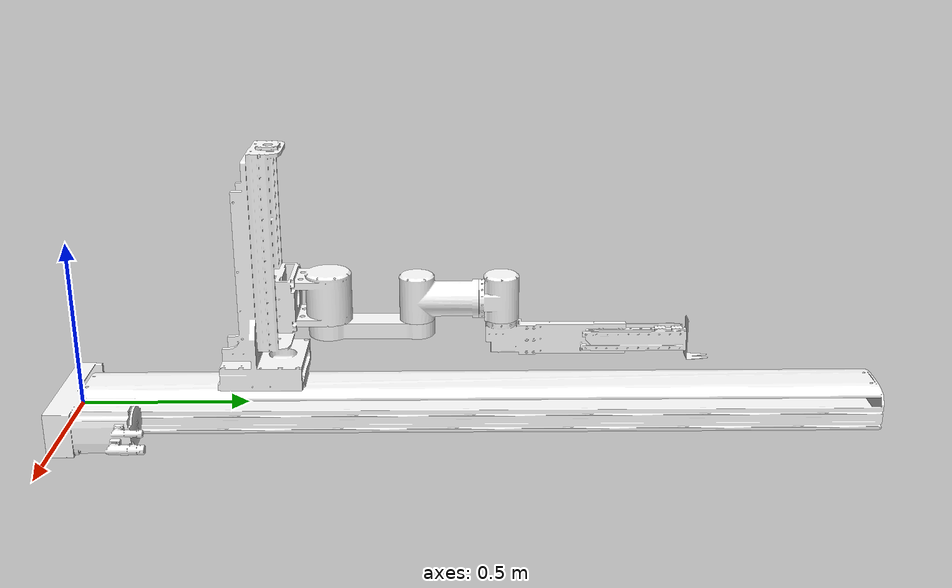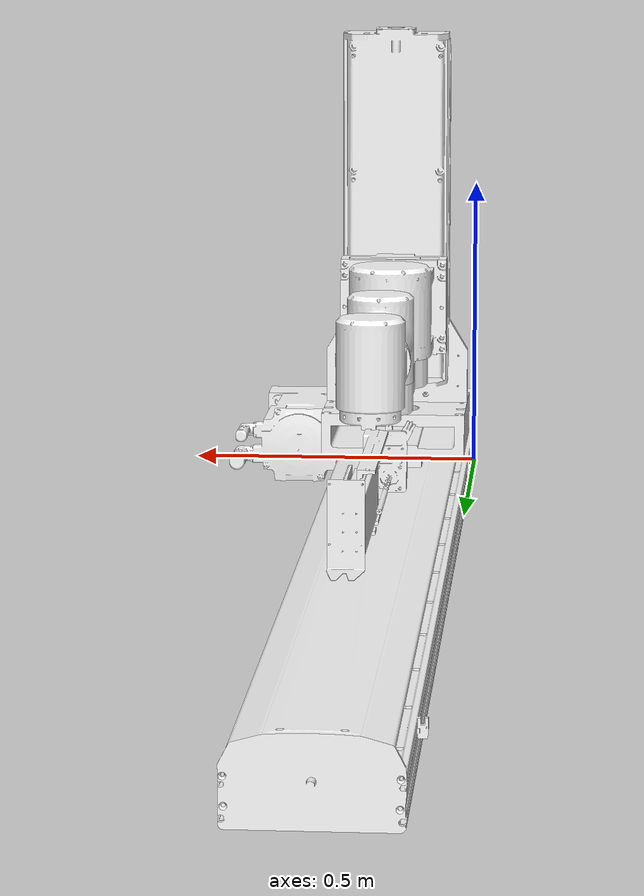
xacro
<?xml version="1.0"?>
<robot xmlns:xacro="http://www.ros.org/wiki/xacro" name="TechRobot">
  <xacro:arg name="prefix" default="" />
  <xacro:arg name="eth_device" default="enp4s0" />

  <xacro:include filename="$(find TechControlInterface)/urdf/robot_description.urdf.xacro" />

  <xacro:include filename="$(find TechControlInterface)/ros2_control/TechJoints.ros2_control.xacro" />

  <!-- create link fixed to the "world" -->
  <link name="world"/>
  <xacro:TechRobot/>

  <xacro:igh_ethercat_drive name="igh_ethercat_drive" />

</robot>

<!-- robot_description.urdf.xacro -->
<robot xmlns:xacro="http://www.ros.org/wiki/xacro">

  <xacro:macro name="TechRobot">

  <!-- helper macro -->
  <xacro:include filename="$(find TechControlInterface)/urdf/create_link.xacro"/>

  <xacro:create_link
      link_name="base_link"
      xyz_offset="0 0 0"
      rpy_offset="0 0 0"
      mass="23.3444937848516"
      mesh_path="package://TechControlInterface/meshes"
  />

  <xacro:create_link
      link_name="link0"
      xyz_offset="0 0 0"
      rpy_offset="0 0 0"
      mass="8.67027571199243"
      mesh_path="package://TechControlInterface/meshes"
  />
  <xacro:create_link
      link_name="link1"
      xyz_offset="0 0 0"
      rpy_offset="0 0 0"
      mass="0.647403062770475"
      mesh_path="package://TechControlInterface/meshes"
  />

  <xacro:create_link
      link_name="link2"
      xyz_offset="0 0 0"
      rpy_offset="0 0 0"
      mass="0.647403062770475"
      mesh_path="package://TechControlInterface/meshes"
  />

  <xacro:create_link
      link_name="link3"
      xyz_offset="0 0 0"
      rpy_offset="0 0 0"
      mass="0.441881459418396"
      mesh_path="package://TechControlInterface/meshes"
  />

  <xacro:create_link
      link_name="link4"
      xyz_offset="0 0 0"
      rpy_offset="0 0 0"
      mass="0.359995634810237"
      mesh_path="package://TechControlInterface/meshes"
  />

  <xacro:create_link
      link_name="link5"
      xyz_offset="0 0 0"
      rpy_offset="0 0 -0.187797428"
      mass="0.441881459418396"
      mesh_path="package://TechControlInterface/meshes"
  />
  <xacro:create_link
      link_name="link6"
      xyz_offset="0 0 0"
      rpy_offset="0 0 0"
      mass="0.441881459418396"
      mesh_path="package://TechControlInterface/meshes"
  />

  <!-- base_joint fixes base_link to the environment -->
  <joint name="base_joint" type="fixed">
    <parent link="world"/>
    <child link="base_link"/>
    <origin xyz="0 0 0" rpy="0 0 0"/>
    <axis xyz="0 0 1"/>
  </joint>

  <!-- joints - main serial chain -->
  <joint name="joint0" type="fixed">
    <parent link="base_link"/>
    <child link="link0"/>
    <origin
     xyz="0 -1 0.061584"
     rpy="0 0 0"/>
    <axis xyz="0 -1 0"/>
    <limit effort="1000.0" lower="-1" upper="1" velocity="2.5"/>
  </joint>
  <joint name="joint1" type="fixed">
    <parent link="link0"/>
    <child link="link1"/>
    <origin
      xyz="0.11 1.6149 0.75501"
      rpy="1.5708 0 1.5708" />
    <axis xyz="0 1 0"/>
    <limit effort="1000.0" lower="-1" upper="1" velocity="2.5"/>
  </joint>

  <joint name="joint2" type="revolute">
    <parent link="link1"/>
    <child link="link2"/>
    <origin
      xyz="0.149 -0.36401 0"
      rpy="1.680577537 0 1.5708" />
    <axis xyz="-1 0 0"/>
    <limit effort="1000.0" lower="${-pi}" upper="${pi}" velocity="2.5"/>
  </joint>

  <joint name="joint3" type="revolute">
    <parent link="link2"/>
    <child link="link3"/>
    <origin
      xyz="-0.01 0.027384 0.2485"
      rpy="-0.317649924 0 0" />
    <axis xyz="1 0 0"/>
    <limit effort="1000.0" lower="${-pi}" upper="${pi}" velocity="2.5"/>
  </joint>

  <joint name="joint4" type="revolute">
    <parent link="link3"/>
    <child link="link4"/>
    <origin
      xyz="-0.0735 -0.036002 0.17075"
      rpy="0 -0.20781 1.5708" />
    <axis xyz="0 0 -1"/>
    <limit effort="1000.0" lower="${-pi}" upper="${pi}" velocity="2.5"/>
  </joint>

  <joint name="joint5" type="revolute">
    <parent link="link4"/>
    <child link="link5"/>
    <origin
      xyz="0 -0.0735 0.0645"
      rpy="1.5708 0 -3.1416" />
    <axis xyz="0 0 -1"/>
    <limit effort="1000.0" lower="${-pi}" upper="${pi}" velocity="2.5"/>
  </joint>

  <joint name="joint6" type="fixed">
    <parent link="link5"/>
    <child link="link6"/>
    <origin
      xyz="0.0035379 0.14737 0.2235"
      rpy="1.5708 0 -3.141497428" />
    <axis xyz="0 0 1"/>
    <limit effort="1000.0" lower="-1" upper="1" velocity="2.5"/>
  </joint>

</xacro:macro>

</robot>

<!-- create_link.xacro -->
<robot xmlns:xacro="http://wiki.ros.org/xacro">

  <xacro:macro name="create_link" params="
        link_name
        xyz_offset
        rpy_offset
        mass
        mesh_path">
    <link name="${link_name}">
      <inertial>
        <origin xyz="0 0 0" rpy="0 0 0"/>
        <mass value="1"/>
        <inertia ixx="1.0" ixy="0.0" ixz="0.0" iyy="1.0" iyz="0.0" izz="1.0"/>
      </inertial>
      <collision>
        <origin xyz="0 0 0" rpy="0 0 0"/>
        <geometry>
          <mesh filename="${mesh_path}/${link_name}.STL"/>
        </geometry>
      </collision>
      <visual>
        <origin xyz="${xyz_offset}" rpy="${rpy_offset}"/>
        <material
          name="">
          <color
            rgba="1 1 1 1" />
        </material>
        <geometry>
          <mesh filename="${mesh_path}/${link_name}.STL"/>
        </geometry>
      </visual>
    </link>
  </xacro:macro>
</robot>
